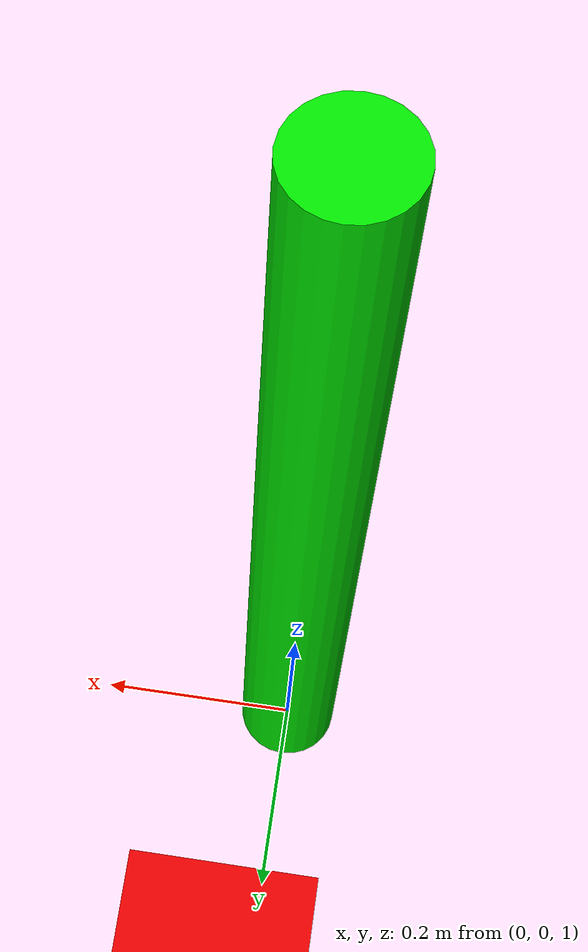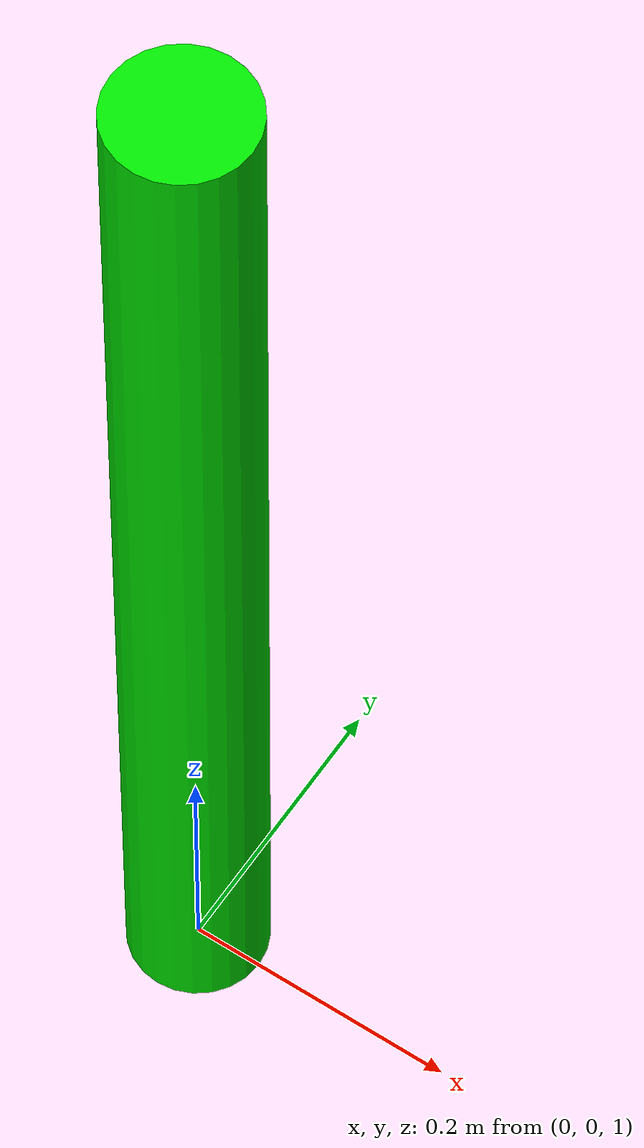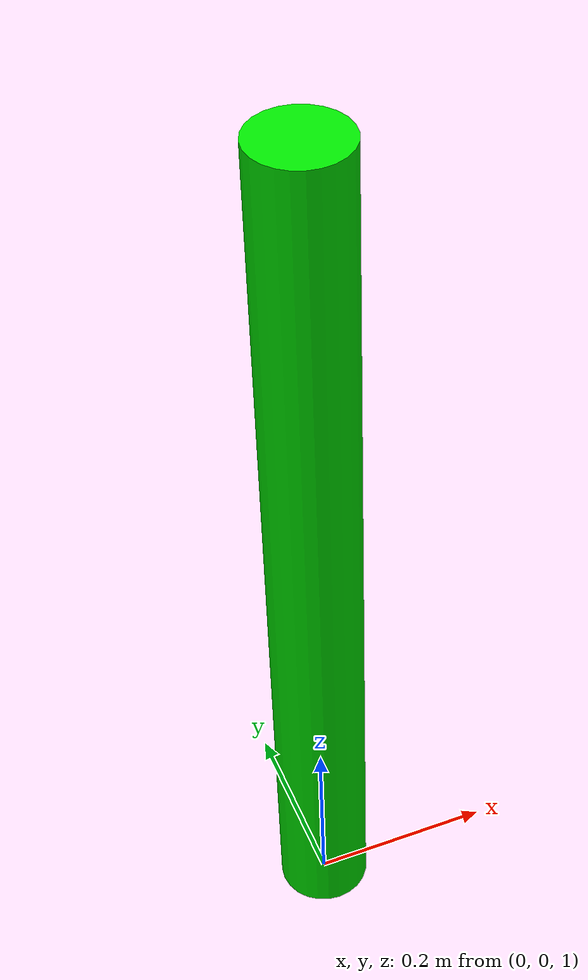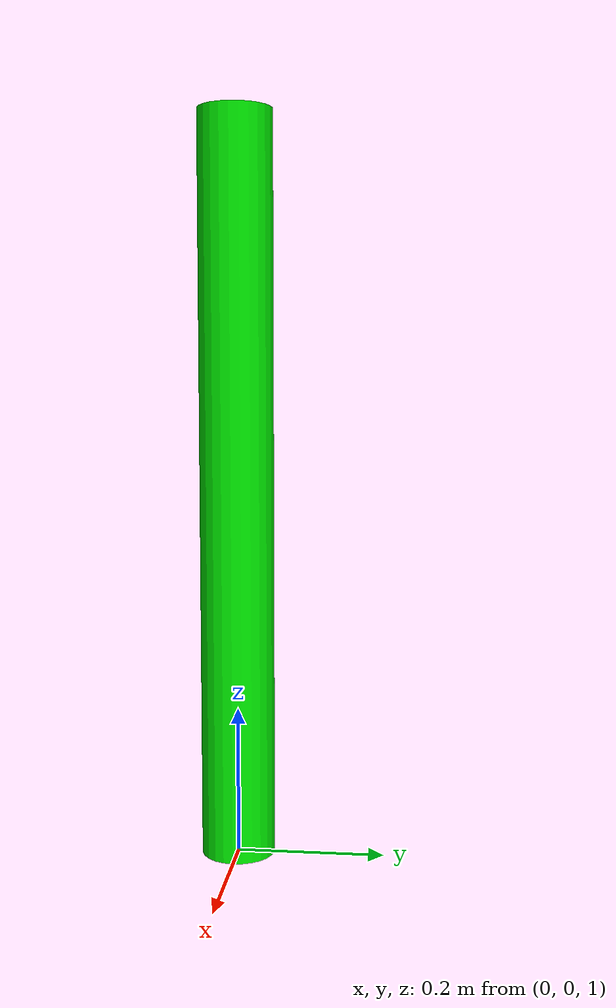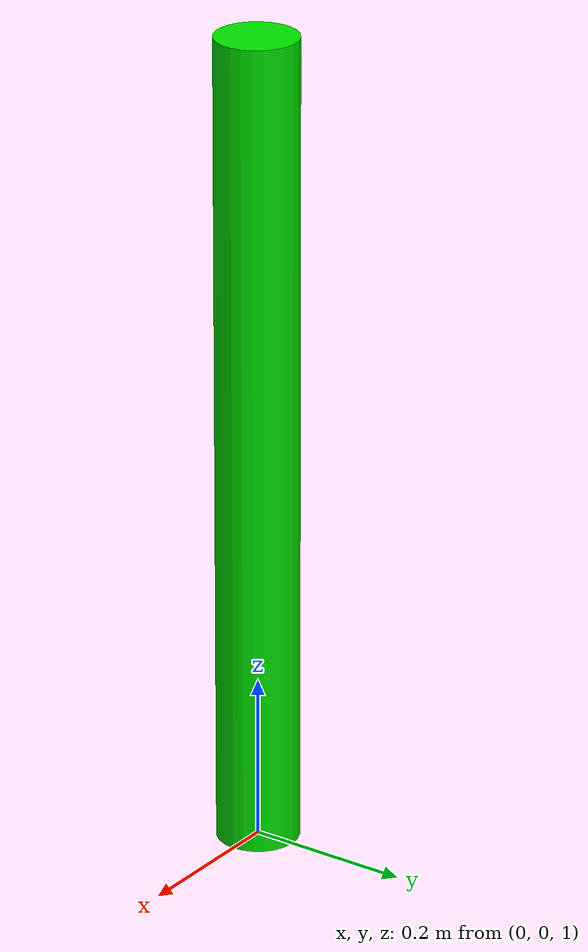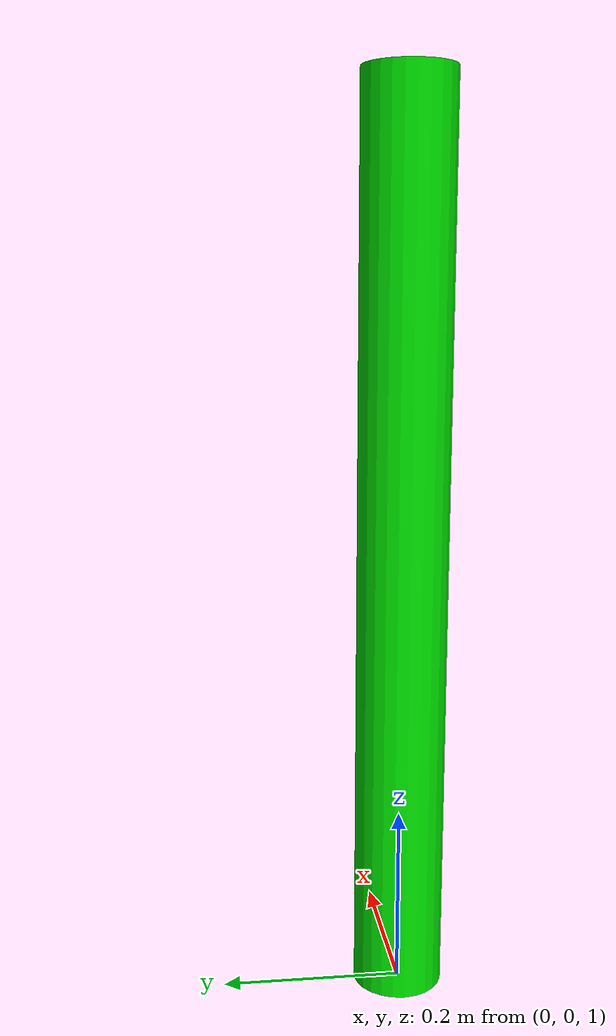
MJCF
<mujoco model="inverted_pendulum">

  <option gravity="0 0 -9.81"/>

  <worldbody>

    <light diffuse="0.5 0.5 0.5" pos="0 0 3" dir="0 0 -1"/>

    <!-- Floor -->
    <geom
      type="plane"
      pos="0 0 0"
      size="5 5 0.1"
      rgba="0.9 0 0 1"/>

    <!-- Pendulum -->
    <body name="pendulum" pos="0 0 2">

      <joint
        name="pin"
        type="hinge"
        axis="0 1 0"
        damping="0"/>

      <geom
        type="cylinder"
        pos="0 0 -0.5"
        size="0.05 0.5"
        mass="1"
        rgba="0 0.9 0 1"/>

    </body>

  </worldbody>

  <!-- Motor for torque control -->
  <actuator>
    <motor
      name="motor"
      joint="pin"
      ctrlrange="-30 30"
      ctrllimited="true"/>
  </actuator>

</mujoco>
